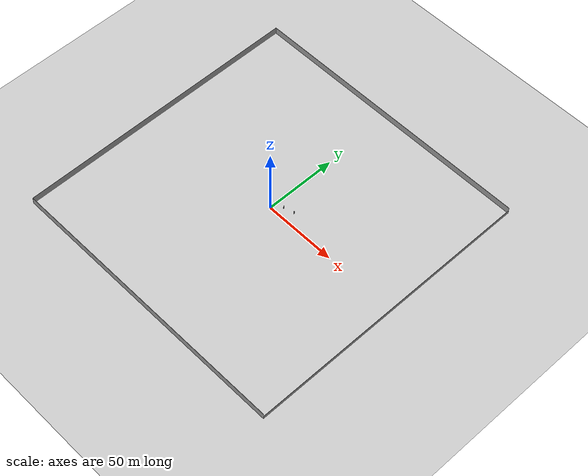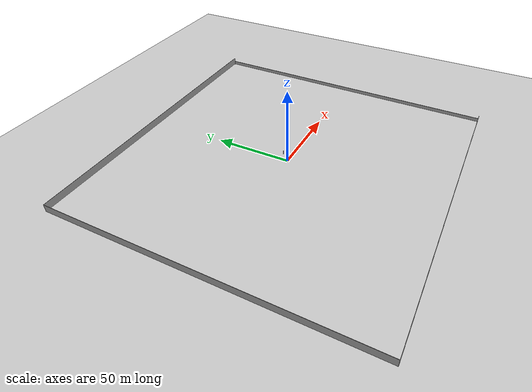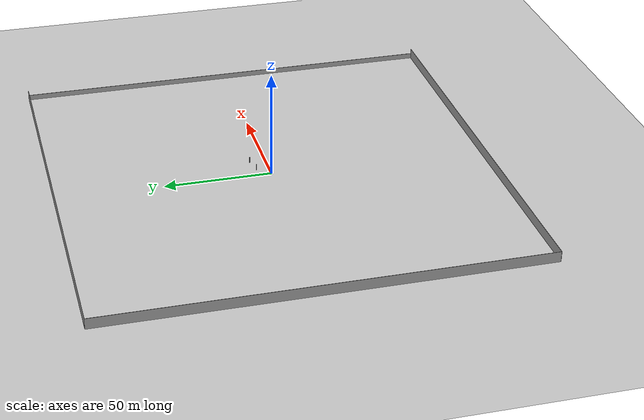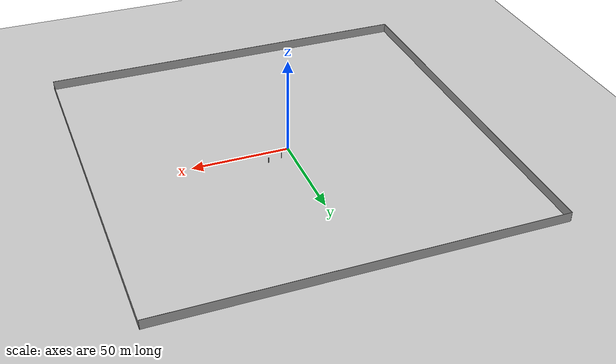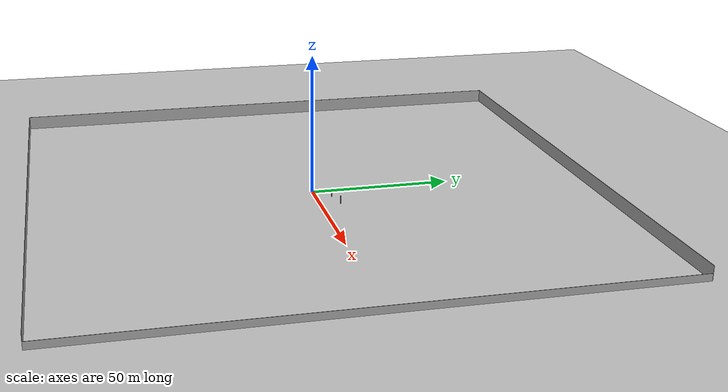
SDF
<sdf version="1.6">
 <world name="default">
  <model name="ground_plane">
   <static>1</static>
   <link name="link">
    <collision name="collision">
     <geometry><plane><normal>0 0 1</normal><size>100 100</size></plane></geometry>
     <surface><friction><ode><mu>100</mu><mu2>50</mu2></ode></friction></surface>
    </collision>
    <visual name="visual">
     <cast_shadows>0</cast_shadows>
     <geometry><plane><normal>0 0 1</normal><size>100 100</size></plane></geometry>
     <material>
      <script><uri>file://media/materials/scripts/gazebo.material</uri><name>Gazebo/Grey</name></script>
     </material>
    </visual>
   </link>
  </model>
  <model name="new_200">
   <link name="Wall_0">
    <pose>0 -100 0 0 -0 0</pose>
    <visual name="Wall_0_Visual">
     <pose>0 0 2.5 0 -0 0</pose>
     <geometry><box><size>200.15 0.15 5</size></box></geometry>
     <material>
      <script><uri>file://media/materials/scripts/gazebo.material</uri><name>Gazebo/Grey</name></script>
      <ambient>1 1 1 1</ambient>
     </material>
     <meta><layer>0</layer></meta>
    </visual>
    <collision name="Wall_0_Collision">
     <pose>0 0 2.5 0 -0 0</pose>
     <geometry><box><size>200.15 0.15 5</size></box></geometry>
     <surface>
      <friction>
       <ode><mu>1</mu><mu2>1</mu2><fdir1>0 0 0</fdir1><slip1>0</slip1><slip2>0</slip2></ode>
       <torsional>
        <coefficient>1</coefficient>
        <patch_radius>0</patch_radius>
        <surface_radius>0</surface_radius>
        <use_patch_radius>1</use_patch_radius>
        <ode><slip>0</slip></ode>
       </torsional>
      </friction>
      <bounce><restitution_coefficient>0</restitution_coefficient><threshold>1e+06</threshold></bounce>
      <contact>
       <collide_without_contact>0</collide_without_contact>
       <collide_without_contact_bitmask>1</collide_without_contact_bitmask>
       <collide_bitmask>1</collide_bitmask>
       <ode>
        <soft_cfm>0</soft_cfm>
        <soft_erp>0.2</soft_erp>
        <kp>1e+13</kp>
        <kd>1</kd>
        <max_vel>0.01</max_vel>
        <min_depth>0</min_depth>
       </ode>
       <bullet>
        <split_impulse>1</split_impulse>
        <split_impulse_penetration_threshold>-0.01</split_impulse_penetration_threshold>
        <soft_cfm>0</soft_cfm>
        <soft_erp>0.2</soft_erp>
        <kp>1e+13</kp>
        <kd>1</kd>
       </bullet>
      </contact>
     </surface>
    </collision>
   </link>
   <link name="Wall_2">
    <pose>-100 0 0 0 -0 1.5708</pose>
    <visual name="Wall_2_Visual">
     <pose>0 0 2.5 0 -0 0</pose>
     <geometry><box><size>200.15 0.15 5</size></box></geometry>
     <material>
      <script><uri>file://media/materials/scripts/gazebo.material</uri><name>Gazebo/Grey</name></script>
      <ambient>1 1 1 1</ambient>
     </material>
     <meta><layer>0</layer></meta>
    </visual>
    <collision name="Wall_2_Collision">
     <pose>0 0 2.5 0 -0 0</pose>
     <geometry><box><size>200.15 0.15 5</size></box></geometry>
     <surface>
      <friction>
       <ode><mu>1</mu><mu2>1</mu2><fdir1>0 0 0</fdir1><slip1>0</slip1><slip2>0</slip2></ode>
       <torsional>
        <coefficient>1</coefficient>
        <patch_radius>0</patch_radius>
        <surface_radius>0</surface_radius>
        <use_patch_radius>1</use_patch_radius>
        <ode><slip>0</slip></ode>
       </torsional>
      </friction>
      <bounce><restitution_coefficient>0</restitution_coefficient><threshold>1e+06</threshold></bounce>
      <contact>
       <collide_without_contact>0</collide_without_contact>
       <collide_without_contact_bitmask>1</collide_without_contact_bitmask>
       <collide_bitmask>1</collide_bitmask>
       <ode>
        <soft_cfm>0</soft_cfm>
        <soft_erp>0.2</soft_erp>
        <kp>1e+13</kp>
        <kd>1</kd>
        <max_vel>0.01</max_vel>
        <min_depth>0</min_depth>
       </ode>
       <bullet>
        <split_impulse>1</split_impulse>
        <split_impulse_penetration_threshold>-0.01</split_impulse_penetration_threshold>
        <soft_cfm>0</soft_cfm>
        <soft_erp>0.2</soft_erp>
        <kp>1e+13</kp>
        <kd>1</kd>
       </bullet>
      </contact>
     </surface>
    </collision>
   </link>
   <link name="Wall_4">
    <pose>0 100 0 0 -0 0</pose>
    <visual name="Wall_4_Visual">
     <pose>0 0 2.5 0 -0 0</pose>
     <geometry><box><size>200.15 0.15 5</size></box></geometry>
     <material>
      <script><uri>file://media/materials/scripts/gazebo.material</uri><name>Gazebo/Grey</name></script>
      <ambient>1 1 1 1</ambient>
     </material>
     <meta><layer>0</layer></meta>
    </visual>
    <collision name="Wall_4_Collision">
     <pose>0 0 2.5 0 -0 0</pose>
     <geometry><box><size>200.15 0.15 5</size></box></geometry>
     <surface>
      <friction>
       <ode><mu>1</mu><mu2>1</mu2><fdir1>0 0 0</fdir1><slip1>0</slip1><slip2>0</slip2></ode>
       <torsional>
        <coefficient>1</coefficient>
        <patch_radius>0</patch_radius>
        <surface_radius>0</surface_radius>
        <use_patch_radius>1</use_patch_radius>
        <ode><slip>0</slip></ode>
       </torsional>
      </friction>
      <bounce><restitution_coefficient>0</restitution_coefficient><threshold>1e+06</threshold></bounce>
      <contact>
       <collide_without_contact>0</collide_without_contact>
       <collide_without_contact_bitmask>1</collide_without_contact_bitmask>
       <collide_bitmask>1</collide_bitmask>
       <ode>
        <soft_cfm>0</soft_cfm>
        <soft_erp>0.2</soft_erp>
        <kp>1e+13</kp>
        <kd>1</kd>
        <max_vel>0.01</max_vel>
        <min_depth>0</min_depth>
       </ode>
       <bullet>
        <split_impulse>1</split_impulse>
        <split_impulse_penetration_threshold>-0.01</split_impulse_penetration_threshold>
        <soft_cfm>0</soft_cfm>
        <soft_erp>0.2</soft_erp>
        <kp>1e+13</kp>
        <kd>1</kd>
       </bullet>
      </contact>
     </surface>
    </collision>
   </link>
   <link name="Wall_6">
    <pose>100 0 0 0 -0 1.5708</pose>
    <visual name="Wall_6_Visual">
     <pose>0 0 1.25 0 -0 0</pose>
     <geometry><box><size>200.15 0.15 2.5</size></box></geometry>
     <material>
      <script><uri>file://media/materials/scripts/gazebo.material</uri><name>Gazebo/Grey</name></script>
      <ambient>1 1 1 1</ambient>
     </material>
     <meta><layer>0</layer></meta>
    </visual>
    <collision name="Wall_6_Collision">
     <pose>0 0 1.25 0 -0 0</pose>
     <geometry><box><size>200.15 0.15 2.5</size></box></geometry>
     <surface>
      <friction>
       <ode><mu>1</mu><mu2>1</mu2><fdir1>0 0 0</fdir1><slip1>0</slip1><slip2>0</slip2></ode>
       <torsional>
        <coefficient>1</coefficient>
        <patch_radius>0</patch_radius>
        <surface_radius>0</surface_radius>
        <use_patch_radius>1</use_patch_radius>
        <ode><slip>0</slip></ode>
       </torsional>
      </friction>
      <bounce><restitution_coefficient>0</restitution_coefficient><threshold>1e+06</threshold></bounce>
      <contact>
       <collide_without_contact>0</collide_without_contact>
       <collide_without_contact_bitmask>1</collide_without_contact_bitmask>
       <collide_bitmask>1</collide_bitmask>
       <ode>
        <soft_cfm>0</soft_cfm>
        <soft_erp>0.2</soft_erp>
        <kp>1e+13</kp>
        <kd>1</kd>
        <max_vel>0.01</max_vel>
        <min_depth>0</min_depth>
       </ode>
       <bullet>
        <split_impulse>1</split_impulse>
        <split_impulse_penetration_threshold>-0.01</split_impulse_penetration_threshold>
        <soft_cfm>0</soft_cfm>
        <soft_erp>0.2</soft_erp>
        <kp>1e+13</kp>
        <kd>1</kd>
       </bullet>
      </contact>
     </surface>
    </collision>
   </link>
   <static>1</static>
   <pose>0.019847 -0.000436 0 0 -0 0</pose>
  </model>
  <model name="empty_pillars_4">
   <model name="empty_pillar_clone_42">
    <link name="link">
     <inertial>
      <mass>1</mass>
      <inertia><ixx>0.145833</ixx><ixy>0</ixy><ixz>0</ixz><iyy>0.145833</iyy><iyz>0</iyz><izz>0.125</izz></inertia>
     </inertial>
     <visual name="visual">
      <geometry><cylinder><radius>0.2</radius><length>5</length></cylinder></geometry>
      <material>
       <script><name>Gazebo/Grey</name><uri>file://media/materials/scripts/gazebo.material</uri></script>
       <shader type="vertex"><normal_map>__default__</normal_map></shader>
       <ambient>0.3 0.3 0.3 1</ambient>
       <diffuse>0.7 0.7 0.7 1</diffuse>
       <specular>0.01 0.01 0.01 1</specular>
       <emissive>0 0 0 1</emissive>
      </material>
     </visual>
     <collision name="collision">
      <geometry><cylinder><radius>0.05</radius><length>5</length></cylinder></geometry>
      <surface>
       <friction>
        <ode><mu>1</mu><mu2>1</mu2><fdir1>0 0 0</fdir1><slip1>0</slip1><slip2>0</slip2></ode>
        <torsional>
         <coefficient>1</coefficient>
         <patch_radius>0</patch_radius>
         <surface_radius>0</surface_radius>
         <use_patch_radius>1</use_patch_radius>
         <ode><slip>0</slip></ode>
        </torsional>
       </friction>
       <bounce><restitution_coefficient>0</restitution_coefficient><threshold>1e+06</threshold></bounce>
       <contact>
        <collide_without_contact>0</collide_without_contact>
        <collide_without_contact_bitmask>1</collide_without_contact_bitmask>
        <collide_bitmask>1</collide_bitmask>
        <ode>
         <soft_cfm>0</soft_cfm>
         <soft_erp>0.2</soft_erp>
         <kp>1e+13</kp>
         <kd>1</kd>
         <max_vel>0.01</max_vel>
         <min_depth>0</min_depth>
        </ode>
        <bullet>
         <split_impulse>1</split_impulse>
         <split_impulse_penetration_threshold>-0.01</split_impulse_penetration_threshold>
         <soft_cfm>0</soft_cfm>
         <soft_erp>0.2</soft_erp>
         <kp>1e+13</kp>
         <kd>1</kd>
        </bullet>
       </contact>
      </surface>
     </collision>
    </link>
    <static>0</static>
    <pose>-12.5409 -20.2416 0 0 -0 0</pose>
   </model>
   <model name="empty_pillar_clone_43">
    <link name="link">
     <inertial>
      <mass>1</mass>
      <inertia><ixx>0.145833</ixx><ixy>0</ixy><ixz>0</ixz><iyy>0.145833</iyy><iyz>0</iyz><izz>0.125</izz></inertia>
     </inertial>
     <visual name="visual">
      <geometry><cylinder><radius>0.2</radius><length>5</length></cylinder></geometry>
      <material>
       <script><name>Gazebo/Grey</name><uri>file://media/materials/scripts/gazebo.material</uri></script>
       <shader type="vertex"><normal_map>__default__</normal_map></shader>
       <ambient>0.3 0.3 0.3 1</ambient>
       <diffuse>0.7 0.7 0.7 1</diffuse>
       <specular>0.01 0.01 0.01 1</specular>
       <emissive>0 0 0 1</emissive>
      </material>
     </visual>
     <collision name="collision">
      <geometry><cylinder><radius>0.05</radius><length>5</length></cylinder></geometry>
      <surface>
       <friction>
        <ode><mu>1</mu><mu2>1</mu2><fdir1>0 0 0</fdir1><slip1>0</slip1><slip2>0</slip2></ode>
        <torsional>
         <coefficient>1</coefficient>
         <patch_radius>0</patch_radius>
         <surface_radius>0</surface_radius>
         <use_patch_radius>1</use_patch_radius>
         <ode><slip>0</slip></ode>
        </torsional>
       </friction>
       <bounce><restitution_coefficient>0</restitution_coefficient><threshold>1e+06</threshold></bounce>
       <contact>
        <collide_without_contact>0</collide_without_contact>
        <collide_without_contact_bitmask>1</collide_without_contact_bitmask>
        <collide_bitmask>1</collide_bitmask>
        <ode>
         <soft_cfm>0</soft_cfm>
         <soft_erp>0.2</soft_erp>
         <kp>1e+13</kp>
         <kd>1</kd>
         <max_vel>0.01</max_vel>
         <min_depth>0</min_depth>
        </ode>
        <bullet>
         <split_impulse>1</split_impulse>
         <split_impulse_penetration_threshold>-0.01</split_impulse_penetration_threshold>
         <soft_cfm>0</soft_cfm>
         <soft_erp>0.2</soft_erp>
         <kp>1e+13</kp>
         <kd>1</kd>
        </bullet>
       </contact>
      </surface>
     </collision>
    </link>
    <static>0</static>
    <pose>-19.7613 -21.8307 0 0 -0 0</pose>
   </model>
   <static>0</static>
   <pose>25.2837 27.6164 0 0 -0 0</pose>
  </model>
 </world>
</sdf>
